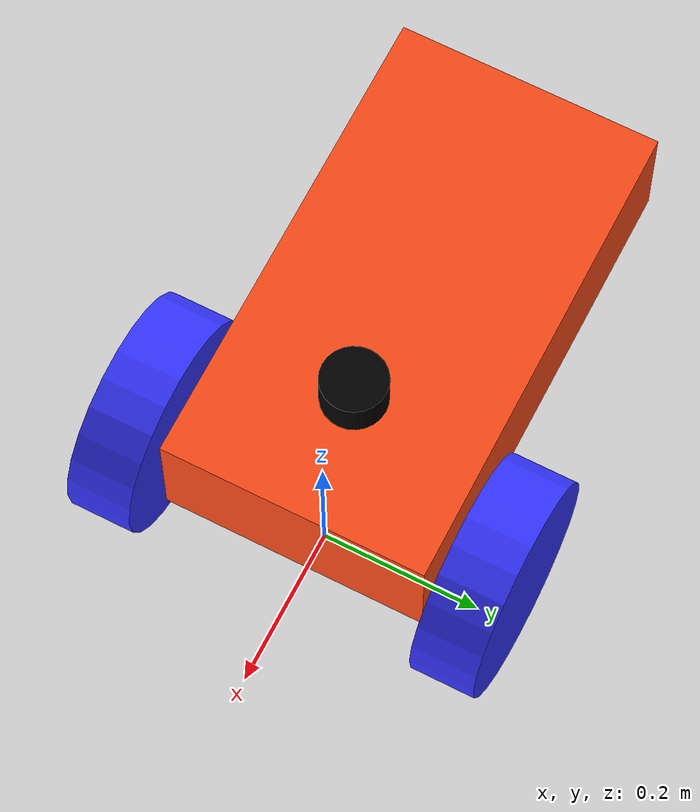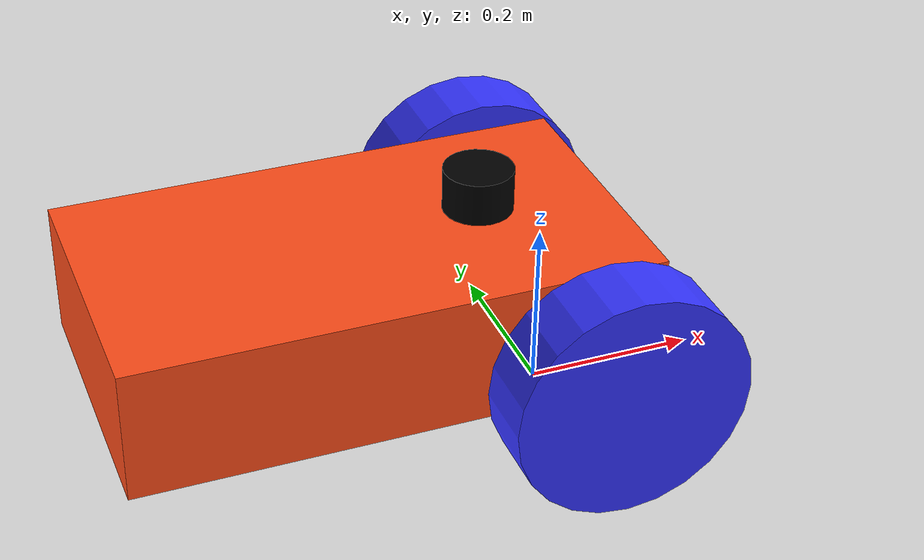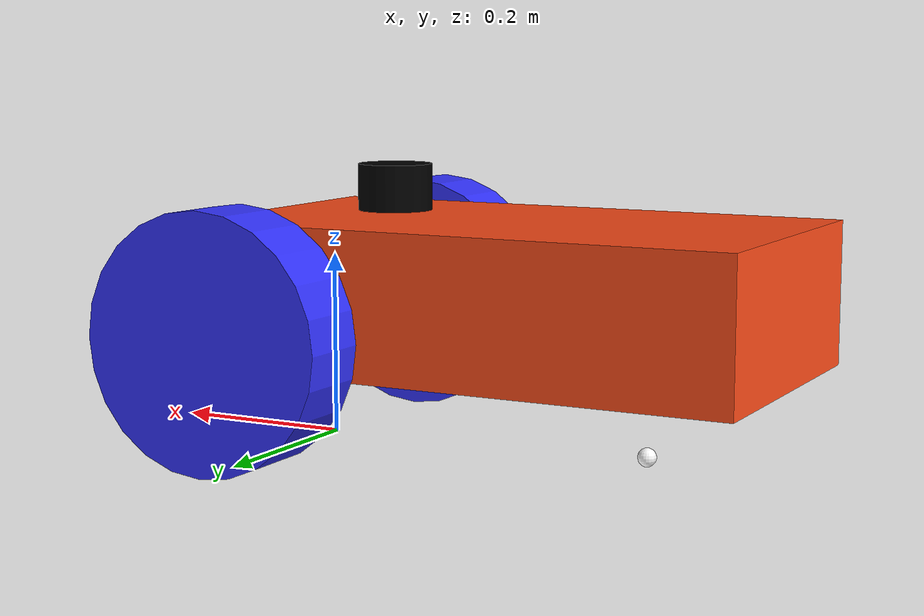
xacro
<?xml version="1.0"?>
<robot xmlns:xacro="http://www.ros.org/wiki/xacro"  name="robot">

    <xacro:arg name="use_ros2_control" default="true"/>
    <xacro:arg name="sim_mode" default="false"/>

    <xacro:include filename="robot_core.xacro" />

    <xacro:if value="$(arg use_ros2_control)">
        <xacro:include filename="ros2_control.xacro" />
    </xacro:if>
    <xacro:unless value="$(arg use_ros2_control)">
        <xacro:include filename="gazebo_control.xacro" />
    </xacro:unless>

    <xacro:include filename="imu.xacro" />

    <!-- New xacro file defining oak-d-lite depth camera -->

</robot>

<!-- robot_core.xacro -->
<robot xmlns:xacro="http://www.ros.org/wiki/xacro" >

    <xacro:include filename="inertial_macros.xacro"/>

    <xacro:property name="chassis_length" value="0.600"/>
    <xacro:property name="chassis_width" value="0.330"/>
    <xacro:property name="chassis_height" value="0.155"/>
    <xacro:property name="chassis_mass" value="15.0"/>
    <xacro:property name="wheel_radius" value="0.135"/>
    <xacro:property name="wheel_thickness" value="0.080"/>
    <xacro:property name="wheel_mass" value="4.0"/>
    <xacro:property name="wheel_offset_x" value="0.285748"/>
    <xacro:property name="wheel_offset_y" value="0.33675"/>
    <xacro:property name="wheel_offset_z" value="-0.035"/>
    <xacro:property name="caster_wheel_radius" value="0.01"/>
    <xacro:property name="caster_wheel_mass" value="0.01"/>
    <xacro:property name="caster_wheel_offset_x" value="0.075"/>
    <xacro:property name="caster_wheel_offset_z" value="${wheel_offset_z - wheel_radius + caster_wheel_radius}"/>

    <material name="white">
        <color rgba="1 1 1 1" />
    </material>

    <material name="orange">
        <color rgba="1 0.3 0.1 1"/>
    </material>

    <material name="blue">
        <color rgba="0.2 0.2 1 1"/>
    </material>

    <material name="black">
        <color rgba="0 0 0 1"/>
    </material>

    <material name="red">
        <color rgba="1 0 0 1"/>
    </material>

    <material name="green">
        <color rgba="0.0 0.8 0.0 1.0"/>
    </material>

    <material name="grey">
        <color rgba="0.6 0.6 0.6 1.0"/>
    </material>

    <material name="grey2">
        <color rgba="0.9 0.9 0.9 1.0"/>
    </material>

    <material name="lightGrey">
        <color rgba="0.6 0.6 0.6 1.0"/>
    </material>

    <!-- BASE LINK -->

    <link name="base_link">
    </link>

    <!-- BASE_FOOTPRINT LINK -->

    <joint name="base_footprint_joint" type="fixed">
        <parent link="base_link"/>
        <child link="base_footprint"/>
        <origin xyz="0 0 0" rpy="0 0 0"/>
    </joint>

    <link name="base_footprint">
    </link>

    <!-- CHASSIS LINK -->

    <joint name="chassis_joint" type="fixed">
        <parent link="base_link"/>
        <child link="chassis"/>
        <origin xyz="${-chassis_length/2 + 0.075} 0 ${wheel_radius - wheel_offset_z}"/>
    </joint>

    <link name="chassis">
        <visual>
            <origin xyz="0 0 0"/>
            <geometry>
                <box size="${chassis_length} ${chassis_width} ${chassis_height}"/>
            </geometry>
            <material name="orange"/>
        </visual>
        <collision>
            <origin xyz="0 0 0"/>
            <geometry>
                <box size="${chassis_length} ${chassis_width} ${chassis_height}"/>
            </geometry>
        </collision>
        <xacro:inertial_box mass="0.5" x="${chassis_length}" y="${chassis_width}" z="${chassis_height}">
            <origin xyz="0 0 0" rpy="0 0 0"/>
        </xacro:inertial_box>
    </link>

    <gazebo reference="chassis">
        <material>Gazebo/Orange</material>
    </gazebo>

    <!-- LEFT WHEEL LINK -->

    <joint name="left_wheel_joint" type="continuous">
        <parent link="chassis"/>
        <child link="left_wheel"/>
        <origin xyz="${chassis_length/2 - 0.075} ${wheel_offset_y/2 + wheel_thickness/2 + 0.01} ${wheel_offset_z}" rpy="-${pi/2} 0 0" />
        <axis xyz="0 0 1"/>
    </joint>

    <link name="left_wheel">
        <visual>
            <geometry>
                <cylinder radius="${wheel_radius}" length="${wheel_thickness}"/>
            </geometry>
            <material name="blue"/>
        </visual>
        <collision>
            <geometry>
                <sphere radius="${wheel_radius}"/>
            </geometry>
        </collision>
        <xacro:inertial_cylinder mass="${wheel_mass}" length="${wheel_thickness}" radius="${wheel_radius}">
            <origin xyz="0 0 0" rpy="0 0 0"/>
        </xacro:inertial_cylinder>
    </link>

    <gazebo reference="left_wheel">
        <material>Gazebo/Blue</material>
    </gazebo>

    <!-- RIGHT WHEEL LINK -->

    <joint name="right_wheel_joint" type="continuous">
        <parent link="chassis"/>
        <child link="right_wheel"/>
        <origin xyz="${chassis_length/2 - 0.075} -${wheel_offset_y/2 + wheel_thickness/2 + 0.01} ${wheel_offset_z}" rpy="${pi/2} 0 0" />
        <axis xyz="0 0 -1"/>
    </joint>

    <link name="right_wheel">
        <visual>
            <geometry>
                <cylinder radius="${wheel_radius}" length="${wheel_thickness}"/>
            </geometry>
            <material name="blue"/>
        </visual>
        <collision>
            <geometry>
                <sphere radius="${wheel_radius}"/>
            </geometry>
        </collision>
        <xacro:inertial_cylinder mass="${wheel_mass}" length="${wheel_thickness}" radius="${wheel_radius}">
            <origin xyz="0 0 0" rpy="0 0 0"/>
        </xacro:inertial_cylinder>
    </link>

    <gazebo reference="right_wheel">
        <material>Gazebo/Blue</material>
    </gazebo>

    <!-- CASTER WHEEL LINK -->

    <joint name="caster_wheel_joint" type="fixed">
        <parent link="chassis"/>
        <child link="caster_wheel"/>
        <origin xyz="-${caster_wheel_offset_x*2} 0 ${caster_wheel_offset_z}"/>
    </joint>

    <link name="caster_wheel">
        <visual>
            <geometry>
                <sphere radius="${caster_wheel_radius}"/>
            </geometry>
            <material name="white"/>
        </visual>
        <collision>
            <geometry>
                <sphere radius="${caster_wheel_radius}"/>
            </geometry>
        </collision>
        <xacro:inertial_sphere mass="${caster_wheel_mass}" radius="${caster_wheel_radius}">
            <origin xyz="0 0 0" rpy="0 0 0"/>
        </xacro:inertial_sphere>
    </link>

    <gazebo reference="caster_wheel">
        <material>Gazebo/White</material>
        <mu1 value="0.001"/>
        <mu2 value="0.001"/>
    </gazebo>

    <!-- Lidar LINK -->

    <joint name="laser_joint" type="fixed">
        <parent link="chassis"/>
        <child link="laser_frame"/>
        <origin xyz="${chassis_length/2 - 0.15285} 0 ${chassis_height/2 + 0.030}" rpy="0 0 ${pi}"/>
    </joint>

    <link name="laser_frame">
        <visual>
            <geometry>
                <cylinder radius="0.04" length="0.05"/>
            </geometry>
            <material name="black"/>
        </visual>
        <collision>
            <geometry>
                <sphere radius="${caster_wheel_radius}"/>
            </geometry>
        </collision>
        <xacro:inertial_sphere mass="${caster_wheel_mass}" radius="${caster_wheel_radius}">
            <origin xyz="0 0 0" rpy="0 0 0"/>
        </xacro:inertial_sphere>
    </link>

    <gazebo reference="laser_frame">
        <material>Gazebo/White</material>
    </gazebo>

</robot>

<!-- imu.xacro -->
<robot xmlns:xacro="http://www.ros.org/wiki/xacro" >

    <joint name="imu_joint" type="fixed">
        <parent link="chassis"/>
        <child link="imu_link"/>
        <origin xyz="${chassis_length/2 - 0.15285} 0 0" rpy="0 0 0"/>
    </joint>

    <link name="imu_link">

    </link>

    <gazebo reference="imu_link">
        <material>Gazebo/Black</material>
    </gazebo>

</robot>
